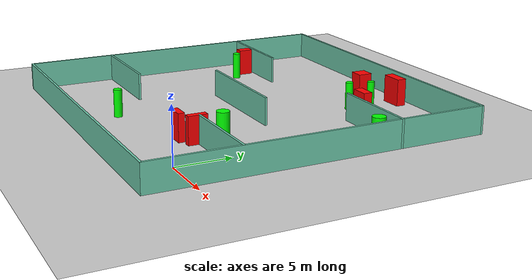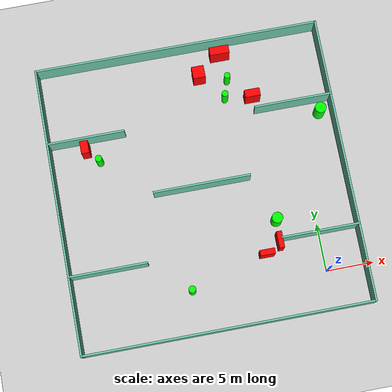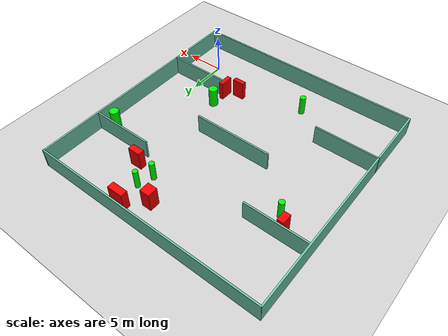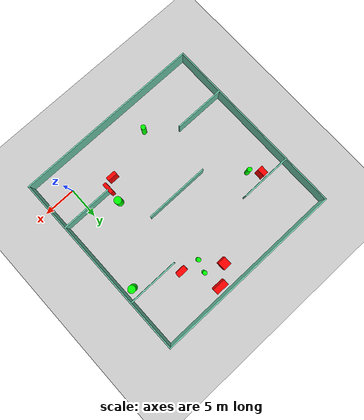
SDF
<sdf version="1.7">
 <world name="default">
  <light name="sun" type="directional">
   <pose>0 0 10 0 -0 0</pose>
   <diffuse>0.8 0.8 0.8 1</diffuse>
   <specular>0.2 0.2 0.2 1</specular>
   <attenuation>
    <range>1000</range>
    <constant>0.9</constant>
    <linear>0.01</linear>
    <quadratic>0.001</quadratic>
   </attenuation>
   <direction>-0.5 0.1 -0.9</direction>
   <spot><inner_angle>0</inner_angle><outer_angle>0</outer_angle><falloff>0</falloff></spot>
  </light>
  <model name="ground_plane">
   <static>1</static>
   <link name="link">
    <collision name="collision">
     <geometry><plane><normal>0 0 1</normal><size>100 100</size></plane></geometry>
     <surface>
      <contact><collide_bitmask>65535</collide_bitmask></contact>
      <friction><ode><mu>100</mu><mu2>50</mu2></ode></friction>
     </surface>
    </collision>
    <visual name="visual">
     <cast_shadows>0</cast_shadows>
     <geometry><plane><normal>0 0 1</normal><size>100 100</size></plane></geometry>
     <material>
      <script><uri>file://media/materials/scripts/gazebo.material</uri><name>Gazebo/Grey</name></script>
     </material>
    </visual>
   </link>
  </model>
  <gravity>0 0 -9.8</gravity>
  <magnetic_field>6e-06 2.3e-05 -4.2e-05</magnetic_field>
  <atmosphere type="adiabatic"/>
  <physics type="ode">
   <max_step_size>0.001</max_step_size>
   <real_time_factor>1</real_time_factor>
   <real_time_update_rate>1000</real_time_update_rate>
  </physics>
  <scene><ambient>0.4 0.4 0.4 1</ambient><background>0.7 0.7 0.7 1</background><shadows>1</shadows></scene>
  <spherical_coordinates>
   <surface_model>EARTH_WGS84</surface_model>
   <latitude_deg>0</latitude_deg>
   <longitude_deg>0</longitude_deg>
   <elevation>0</elevation>
   <heading_deg>0</heading_deg>
  </spherical_coordinates>
  <model name="my_base_walls">
   <link name="Wall_10">
    <collision name="Wall_10_Collision">
     <geometry><box><size>8.2 0.2 2.5</size></box></geometry>
     <pose>0 0 1.25 0 -0 0</pose>
    </collision>
    <visual name="Wall_10_Visual">
     <pose>0 0 1.25 0 -0 0</pose>
     <geometry><box><size>8.2 0.2 2.5</size></box></geometry>
     <material>
      <script><uri>file://media/materials/scripts/gazebo.material</uri><name>Gazebo/Grey</name></script>
      <ambient>0.435294 0.796078 0.67451 1</ambient>
     </material>
     <meta><layer>0</layer></meta>
    </visual>
    <pose>-11 -7 0 0 -0 0</pose>
   </link>
   <link name="Wall_12">
    <collision name="Wall_12_Collision">
     <geometry><box><size>8.2 0.2 2.5</size></box></geometry>
     <pose>0 0 1.25 0 -0 0</pose>
    </collision>
    <visual name="Wall_12_Visual">
     <pose>0 0 1.25 0 -0 0</pose>
     <geometry><box><size>8.2 0.2 2.5</size></box></geometry>
     <material>
      <script><uri>file://media/materials/scripts/gazebo.material</uri><name>Gazebo/Grey</name></script>
      <ambient>0.435294 0.796078 0.67451 1</ambient>
     </material>
     <meta><layer>0</layer></meta>
    </visual>
    <pose>-11 7 0 0 -0 0</pose>
   </link>
   <link name="Wall_14">
    <collision name="Wall_14_Collision">
     <geometry><box><size>8.2 0.2 2.5</size></box></geometry>
     <pose>0 0 1.25 0 -0 0</pose>
    </collision>
    <visual name="Wall_14_Visual">
     <pose>0 0 1.25 0 -0 0</pose>
     <geometry><box><size>8.2 0.2 2.5</size></box></geometry>
     <material>
      <script><uri>file://media/materials/scripts/gazebo.material</uri><name>Gazebo/Grey</name></script>
      <ambient>0.435294 0.796078 0.67451 1</ambient>
     </material>
     <meta><layer>0</layer></meta>
    </visual>
    <pose>11 7 0 0 -0 3.14159</pose>
   </link>
   <link name="Wall_16">
    <collision name="Wall_16_Collision">
     <geometry><box><size>10.2 0.2 2.5</size></box></geometry>
     <pose>0 0 1.25 0 -0 0</pose>
    </collision>
    <visual name="Wall_16_Visual">
     <pose>0 0 1.25 0 -0 0</pose>
     <geometry><box><size>10.2 0.2 2.5</size></box></geometry>
     <material>
      <script><uri>file://media/materials/scripts/gazebo.material</uri><name>Gazebo/Grey</name></script>
      <ambient>0.435294 0.796078 0.67451 1</ambient>
     </material>
     <meta><layer>0</layer></meta>
    </visual>
    <pose>0 0 0 0 -0 3.14159</pose>
   </link>
   <link name="Wall_2">
    <collision name="Wall_2_Collision">
     <geometry><box><size>30.2 0.2 2.5</size></box></geometry>
     <pose>0 0 1.25 0 -0 0</pose>
    </collision>
    <visual name="Wall_2_Visual">
     <pose>0 0 1.25 0 -0 0</pose>
     <geometry><box><size>30.2 0.2 2.5</size></box></geometry>
     <material>
      <script><uri>file://media/materials/scripts/gazebo.material</uri><name>Gazebo/Grey</name></script>
      <ambient>0.435294 0.796078 0.67451 1</ambient>
     </material>
     <meta><layer>0</layer></meta>
    </visual>
    <pose>0 -15 0 0 -0 3.14159</pose>
   </link>
   <link name="Wall_3">
    <collision name="Wall_3_Collision">
     <geometry><box><size>30.2 0.2 2.5</size></box></geometry>
     <pose>0 0 1.25 0 -0 0</pose>
    </collision>
    <visual name="Wall_3_Visual">
     <pose>0 0 1.25 0 -0 0</pose>
     <geometry><box><size>30.2 0.2 2.5</size></box></geometry>
     <material>
      <script><uri>file://media/materials/scripts/gazebo.material</uri><name>Gazebo/Grey</name></script>
      <ambient>0.435294 0.796078 0.67451 1</ambient>
     </material>
     <meta><layer>0</layer></meta>
    </visual>
    <pose>-15 0 0 0 -0 1.5708</pose>
   </link>
   <link name="Wall_4">
    <collision name="Wall_4_Collision">
     <geometry><box><size>30.2 0.2 2.5</size></box></geometry>
     <pose>0 0 1.25 0 -0 0</pose>
    </collision>
    <visual name="Wall_4_Visual">
     <pose>0 0 1.25 0 -0 0</pose>
     <geometry><box><size>30.2 0.2 2.5</size></box></geometry>
     <material>
      <script><uri>file://media/materials/scripts/gazebo.material</uri><name>Gazebo/Grey</name></script>
      <ambient>0.435294 0.796078 0.67451 1</ambient>
     </material>
     <meta><layer>0</layer></meta>
    </visual>
    <pose>0 15 0 0 -0 0</pose>
   </link>
   <link name="Wall_6">
    <collision name="Wall_6_Collision">
     <geometry><box><size>30.2 0.2 2.5</size></box></geometry>
     <pose>0 0 1.25 0 -0 0</pose>
    </collision>
    <visual name="Wall_6_Visual">
     <pose>0 0 1.25 0 -0 0</pose>
     <geometry><box><size>30.2 0.2 2.5</size></box></geometry>
     <material>
      <script><uri>file://media/materials/scripts/gazebo.material</uri><name>Gazebo/Grey</name></script>
      <ambient>0.435294 0.796078 0.67451 1</ambient>
     </material>
     <meta><layer>0</layer></meta>
    </visual>
    <pose>15 0 0 0 -0 1.5708</pose>
   </link>
   <link name="Wall_8">
    <collision name="Wall_8_Collision">
     <geometry><box><size>8.2 0.2 2.5</size></box></geometry>
     <pose>0 0 1.25 0 -0 0</pose>
    </collision>
    <visual name="Wall_8_Visual">
     <pose>0 0 1.25 0 -0 0</pose>
     <geometry><box><size>8.2 0.2 2.5</size></box></geometry>
     <material>
      <script><uri>file://media/materials/scripts/gazebo.material</uri><name>Gazebo/Grey</name></script>
      <ambient>0.435294 0.796078 0.67451 1</ambient>
     </material>
     <meta><layer>0</layer></meta>
    </visual>
    <pose>11 -7 0 0 -0 3.14159</pose>
   </link>
   <static>1</static>
   <pose>-11 11 0 0 -0 0</pose>
  </model>
  <model name="cylinder1">
   <static>1</static>
   <link name="link">
    <inertial>
     <mass>1</mass>
     <inertia><ixx>0.5</ixx><ixy>0</ixy><ixz>0</ixz><iyy>0.5</iyy><iyz>0</iyz><izz>1</izz></inertia>
    </inertial>
    <collision name="collision">
     <geometry><cylinder><radius>0.3407632219108776</radius><length>2.5</length></cylinder></geometry>
    </collision>
    <visual name="visual">
     <geometry><cylinder><radius>0.3407632219108776</radius><length>2.5</length></cylinder></geometry>
     <material>
      <ambient>0 1 0 1</ambient>
      <diffuse>0 1 0 1</diffuse>
      <specular>0.1 0.1 0.1 1</specular>
      <emissive>0 0 0 0</emissive>
     </material>
    </visual>
   </link>
   <pose>-6.866143316167097 19.97383267426917 1.25 0 0 0</pose>
  </model>
  <model name="cylinder2">
   <static>1</static>
   <link name="link">
    <inertial>
     <mass>1</mass>
     <inertia><ixx>0.5</ixx><ixy>0</ixy><ixz>0</ixz><iyy>0.5</iyy><iyz>0</iyz><izz>1</izz></inertia>
    </inertial>
    <collision name="collision">
     <geometry><cylinder><radius>0.586850985889514</radius><length>2.5</length></cylinder></geometry>
    </collision>
    <visual name="visual">
     <geometry><cylinder><radius>0.586850985889514</radius><length>2.5</length></cylinder></geometry>
     <material>
      <ambient>0 1 0 1</ambient>
      <diffuse>0 1 0 1</diffuse>
      <specular>0.1 0.1 0.1 1</specular>
      <emissive>0 0 0 0</emissive>
     </material>
    </visual>
   </link>
   <pose>2.664926117916014 16.667021475730685 1.25 0 0 0</pose>
  </model>
  <model name="cylinder3">
   <static>1</static>
   <link name="link">
    <inertial>
     <mass>1</mass>
     <inertia><ixx>0.5</ixx><ixy>0</ixy><ixz>0</ixz><iyy>0.5</iyy><iyz>0</iyz><izz>1</izz></inertia>
    </inertial>
    <collision name="collision">
     <geometry><cylinder><radius>0.57341383498026</radius><length>2.5</length></cylinder></geometry>
    </collision>
    <visual name="visual">
     <geometry><cylinder><radius>0.57341383498026</radius><length>2.5</length></cylinder></geometry>
     <material>
      <ambient>0 1 0 1</ambient>
      <diffuse>0 1 0 1</diffuse>
      <specular>0.1 0.1 0.1 1</specular>
      <emissive>0 0 0 0</emissive>
     </material>
    </visual>
   </link>
   <pose>-4.0866614297372195 6.0881293234580625 1.25 0 0 0</pose>
  </model>
  <model name="cylinder4">
   <static>1</static>
   <link name="link">
    <inertial>
     <mass>1</mass>
     <inertia><ixx>0.5</ixx><ixy>0</ixy><ixz>0</ixz><iyy>0.5</iyy><iyz>0</iyz><izz>1</izz></inertia>
    </inertial>
    <collision name="collision">
     <geometry><cylinder><radius>0.35901545876026114</radius><length>2.5</length></cylinder></geometry>
    </collision>
    <visual name="visual">
     <geometry><cylinder><radius>0.35901545876026114</radius><length>2.5</length></cylinder></geometry>
     <material>
      <ambient>0 1 0 1</ambient>
      <diffuse>0 1 0 1</diffuse>
      <specular>0.1 0.1 0.1 1</specular>
      <emissive>0 0 0 0</emissive>
     </material>
    </visual>
   </link>
   <pose>-21.013430732187018 15.56586424139363 1.25 0 0 0</pose>
  </model>
  <model name="cylinder5">
   <static>1</static>
   <link name="link">
    <inertial>
     <mass>1</mass>
     <inertia><ixx>0.5</ixx><ixy>0</ixy><ixz>0</ixz><iyy>0.5</iyy><iyz>0</iyz><izz>1</izz></inertia>
    </inertial>
    <collision name="collision">
     <geometry><cylinder><radius>0.3232451463633588</radius><length>2.5</length></cylinder></geometry>
    </collision>
    <visual name="visual">
     <geometry><cylinder><radius>0.3232451463633588</radius><length>2.5</length></cylinder></geometry>
     <material>
      <ambient>0 1 0 1</ambient>
      <diffuse>0 1 0 1</diffuse>
      <specular>0.1 0.1 0.1 1</specular>
      <emissive>0 0 0 0</emissive>
     </material>
    </visual>
   </link>
   <pose>-6.270634995086473 21.88286755924755 1.25 0 0 0</pose>
  </model>
  <model name="cylinder6">
   <static>1</static>
   <link name="link">
    <inertial>
     <mass>1</mass>
     <inertia><ixx>0.5</ixx><ixy>0</ixy><ixz>0</ixz><iyy>0.5</iyy><iyz>0</iyz><izz>1</izz></inertia>
    </inertial>
    <collision name="collision">
     <geometry><cylinder><radius>0.3748860908537368</radius><length>2.5</length></cylinder></geometry>
    </collision>
    <visual name="visual">
     <geometry><cylinder><radius>0.3748860908537368</radius><length>2.5</length></cylinder></geometry>
     <material>
      <ambient>0 1 0 1</ambient>
      <diffuse>0 1 0 1</diffuse>
      <specular>0.1 0.1 0.1 1</specular>
      <emissive>0 0 0 0</emissive>
     </material>
    </visual>
   </link>
   <pose>-13.952199589018589 0.501671795088356 1.25 0 0 0</pose>
  </model>
  <model name="box1">
   <static>1</static>
   <link name="link">
    <inertial>
     <mass>1</mass>
     <inertia><ixx>0.083</ixx><ixy>0</ixy><ixz>0</ixz><iyy>0.083</iyy><iyz>0</iyz><izz>0.083</izz></inertia>
    </inertial>
    <collision name="collision">
     <geometry><box><size>1.2891151000066206 1.2802668828182044 2.5</size></box></geometry>
    </collision>
    <visual name="visual">
     <geometry><box><size>1.2891151000066206 1.2802668828182044 2.5</size></box></geometry>
     <material>
      <ambient>1 0 0 1</ambient>
      <diffuse>1 0 0 1</diffuse>
      <specular>0.1 0.1 0.1 1</specular>
      <emissive>0 0 0 0</emissive>
     </material>
    </visual>
    <sensor name="my_contact" type="contact">
     <contact><collision>box_collision</collision><topic>__default_topic__</topic></contact>
    </sensor>
   </link>
   <pose>-9.180121445547123 22.804509607592234 1.25 0 0 0</pose>
  </model>
  <model name="box2">
   <static>1</static>
   <link name="link">
    <inertial>
     <mass>1</mass>
     <inertia><ixx>0.083</ixx><ixy>0</ixy><ixz>0</ixz><iyy>0.083</iyy><iyz>0</iyz><izz>0.083</izz></inertia>
    </inertial>
    <collision name="collision">
     <geometry><box><size>2.052403231424088 0.8708120408031235 2.5</size></box></geometry>
    </collision>
    <visual name="visual">
     <geometry><box><size>2.052403231424088 0.8708120408031235 2.5</size></box></geometry>
     <material>
      <ambient>1 0 0 1</ambient>
      <diffuse>1 0 0 1</diffuse>
      <specular>0.1 0.1 0.1 1</specular>
      <emissive>0 0 0 0</emissive>
     </material>
    </visual>
    <sensor name="my_contact" type="contact">
     <contact><collision>box_collision</collision><topic>__default_topic__</topic></contact>
    </sensor>
   </link>
   <pose>-6.584905894121002 24.767124929540813 1.25 0 0 0</pose>
  </model>
  <model name="box3">
   <static>1</static>
   <link name="link">
    <inertial>
     <mass>1</mass>
     <inertia><ixx>0.083</ixx><ixy>0</ixy><ixz>0</ixz><iyy>0.083</iyy><iyz>0</iyz><izz>0.083</izz></inertia>
    </inertial>
    <collision name="collision">
     <geometry><box><size>0.5509205688902759 1.7313696493270943 2.5</size></box></geometry>
    </collision>
    <visual name="visual">
     <geometry><box><size>0.5509205688902759 1.7313696493270943 2.5</size></box></geometry>
     <material>
      <ambient>1 0 0 1</ambient>
      <diffuse>1 0 0 1</diffuse>
      <specular>0.1 0.1 0.1 1</specular>
      <emissive>0 0 0 0</emissive>
     </material>
    </visual>
    <sensor name="my_contact" type="contact">
     <contact><collision>box_collision</collision><topic>__default_topic__</topic></contact>
    </sensor>
   </link>
   <pose>-4.225461859461268 3.8234103133639925 1.25 0 0 0</pose>
  </model>
  <model name="box4">
   <static>1</static>
   <link name="link">
    <inertial>
     <mass>1</mass>
     <inertia><ixx>0.083</ixx><ixy>0</ixy><ixz>0</ixz><iyy>0.083</iyy><iyz>0</iyz><izz>0.083</izz></inertia>
    </inertial>
    <collision name="collision">
     <geometry><box><size>1.5500116032170417 0.5834457702634638 2.5</size></box></geometry>
    </collision>
    <visual name="visual">
     <geometry><box><size>1.5500116032170417 0.5834457702634638 2.5</size></box></geometry>
     <material>
      <ambient>1 0 0 1</ambient>
      <diffuse>1 0 0 1</diffuse>
      <specular>0.1 0.1 0.1 1</specular>
      <emissive>0 0 0 0</emissive>
     </material>
    </visual>
    <sensor name="my_contact" type="contact">
     <contact><collision>box_collision</collision><topic>__default_topic__</topic></contact>
    </sensor>
   </link>
   <pose>-5.7594786639586015 2.8177206376204342 1.25 0 0 0</pose>
  </model>
  <model name="box5">
   <static>1</static>
   <link name="link">
    <inertial>
     <mass>1</mass>
     <inertia><ixx>0.083</ixx><ixy>0</ixy><ixz>0</ixz><iyy>0.083</iyy><iyz>0</iyz><izz>0.083</izz></inertia>
    </inertial>
    <collision name="collision">
     <geometry><box><size>1.6093597169630385 0.8139920916425024 2.5</size></box></geometry>
    </collision>
    <visual name="visual">
     <geometry><box><size>1.6093597169630385 0.8139920916425024 2.5</size></box></geometry>
     <material>
      <ambient>1 0 0 1</ambient>
      <diffuse>1 0 0 1</diffuse>
      <specular>0.1 0.1 0.1 1</specular>
      <emissive>0 0 0 0</emissive>
     </material>
    </visual>
    <sensor name="my_contact" type="contact">
     <contact><collision>box_collision</collision><topic>__default_topic__</topic></contact>
    </sensor>
   </link>
   <pose>-4.039381407191184 19.549357799039353 1.25 0 0 0</pose>
  </model>
  <model name="box6">
   <static>1</static>
   <link name="link">
    <inertial>
     <mass>1</mass>
     <inertia><ixx>0.083</ixx><ixy>0</ixy><ixz>0</ixz><iyy>0.083</iyy><iyz>0</iyz><izz>0.083</izz></inertia>
    </inertial>
    <collision name="collision">
     <geometry><box><size>0.8388826313907916 1.3215901967722192 2.5</size></box></geometry>
    </collision>
    <visual name="visual">
     <geometry><box><size>0.8388826313907916 1.3215901967722192 2.5</size></box></geometry>
     <material>
      <ambient>1 0 0 1</ambient>
      <diffuse>1 0 0 1</diffuse>
      <specular>0.1 0.1 0.1 1</specular>
      <emissive>0 0 0 0</emissive>
     </material>
    </visual>
    <sensor name="my_contact" type="contact">
     <contact><collision>box_collision</collision><topic>__default_topic__</topic></contact>
    </sensor>
   </link>
   <pose>-22.2538604424955 17.027022774530014 1.25 0 0 0</pose>
  </model>
 </world>
</sdf>
